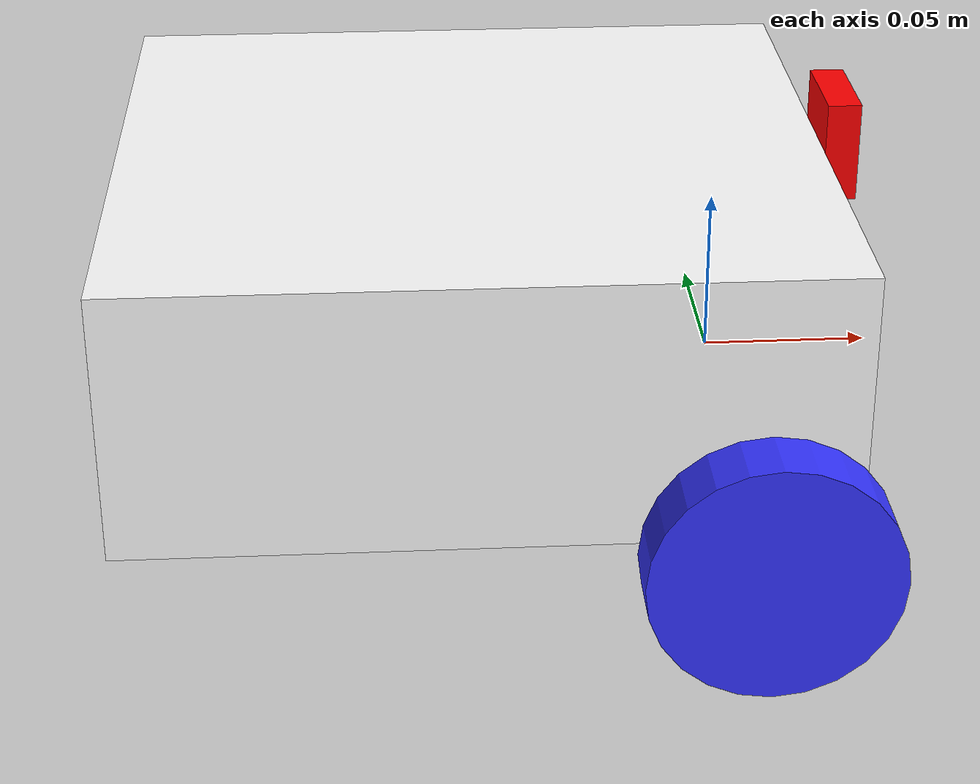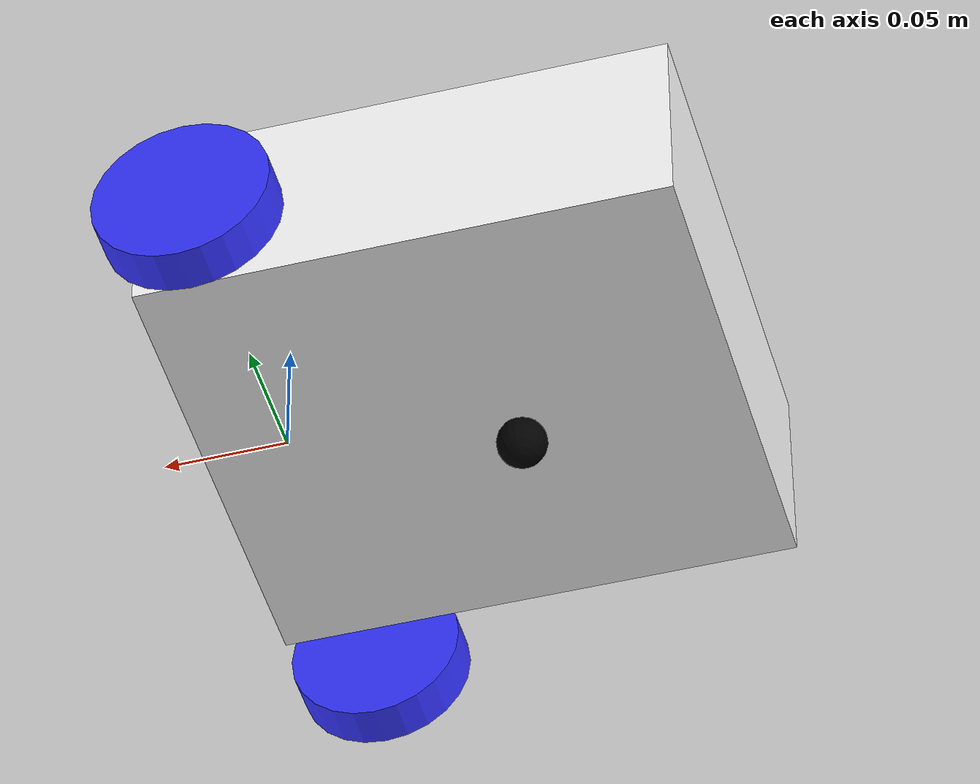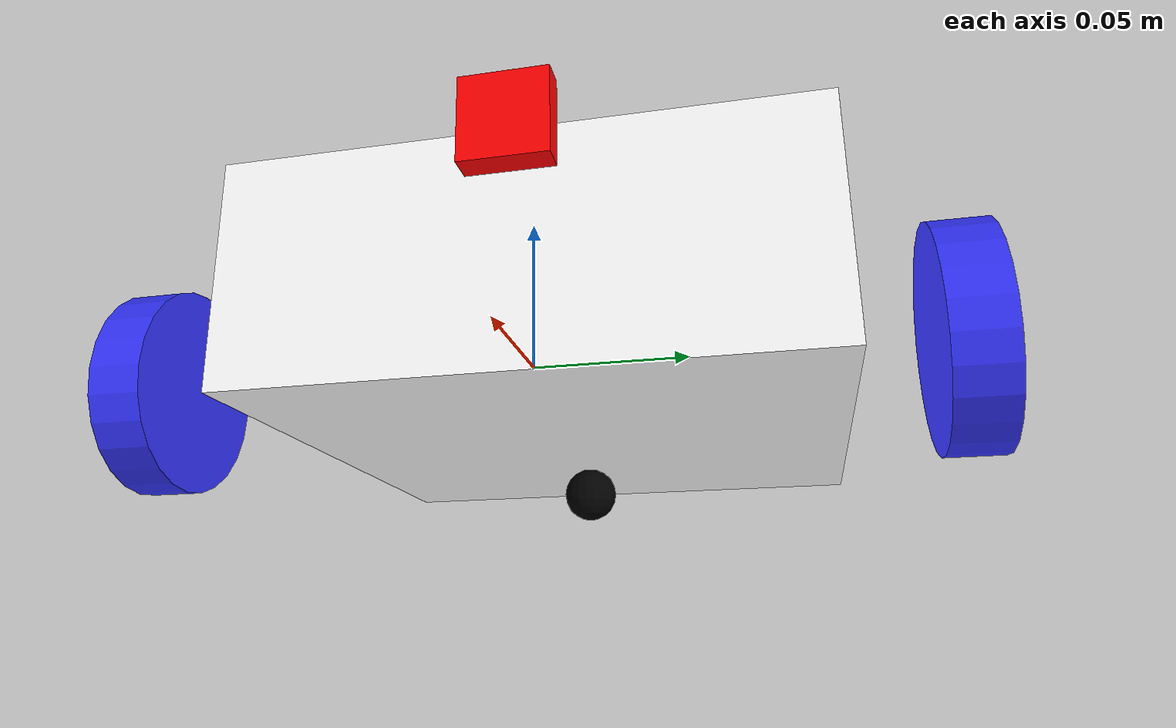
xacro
<?xml version="1.0"?>
<robot xmlns:xacro="http://www.ros.org/wiki/xacro" name="Robot">

	<xacro:arg name="use_ros2_control" default="true" />
	<xacro:arg name="sim_mode" default="false" />

	<xacro:include filename="robot_core.xacro" />

	<xacro:if value="$(arg use_ros2_control)">
		<xacro:include filename="ros2_control.xacro" />
	</xacro:if>
	<xacro:unless value="$(arg use_ros2_control)">
		<xacro:include filename="gazebo_control.xacro" />
	</xacro:unless>

	<xacro:include filename="depth_camera.xacro" />

</robot>

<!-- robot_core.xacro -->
<robot xmlns:xacro="http://www.ros.org/wiki/xacro">

	<xacro:include filename="inertial_macros.xacro" />

	<xacro:property name="chassis_length" value="0.21"/>
    <xacro:property name="chassis_width" value="0.2"/>
    <xacro:property name="chassis_height" value="0.08"/>
    <xacro:property name="chassis_mass" value="1.0"/>
    <xacro:property name="wheel_radius" value="0.035"/>
    <xacro:property name="wheel_thickness" value="0.018"/>
    <xacro:property name="wheel_mass" value="0.1"/>
    <xacro:property name="wheel_offset_x" value="0.179"/>
    <xacro:property name="wheel_offset_y" value="0.13"/>
    <xacro:property name="wheel_offset_z" value="0.01"/>
    <xacro:property name="caster_wheel_radius" value="0.01"/>
    <xacro:property name="caster_wheel_mass" value="0.01"/>
    <xacro:property name="caster_wheel_offset_x" value="0.085"/>
    <xacro:property name="caster_wheel_offset_z" value="${wheel_offset_z - wheel_radius + caster_wheel_radius}"/>

	<material name="white">
    <color rgba="1 1 1 1"/>
	</material>

	<material name="orange">
	    <color rgba="1 0.3 0.1 1"/>
	</material>

	<material name="blue">
	    <color rgba="0.2 0.2 1 1"/>
	</material>

	<material name="black">
	    <color rgba="0 0 0 1"/>
	</material>

	<material name="red">
        <color rgba="1 0 0 1"/>
    </material>

	<!-- BASE LINK -->

	<link name="base_link">
	</link>

	<!-- BASE_FOOTPRINT LINK for SLAM purpose-->

    <joint name="base_footprint_joint" type="fixed">
        <parent link="base_link"/>
        <child link="base_footprint"/>
        <origin xyz="0 0 0" rpy="0 0 0"/>
    </joint>

    <link name="base_footprint">
    </link>

	<!-- CHASSIS LINK -->

	<joint name="chassis_joint" type="fixed">
	    <parent link="base_link"/>
	    <child link="chassis"/>
	    <origin xyz="${-wheel_offset_x} 0 ${-wheel_offset_z}"/>
	</joint>

	<link name="chassis">
		<!-- Visual and collision here -->
	    <visual>
	        <origin xyz="${chassis_length/2} 0 ${chassis_height/2}"/>
	        <geometry>
	            <box size="${chassis_length} ${chassis_width} ${chassis_height}"/>
	        </geometry>
	        <material name="white"/>
	    </visual>
		<collision>
			<origin xyz="${chassis_length/2} 0 ${chassis_height/2}"/>
	        <geometry>
	            <box size="${chassis_length} ${chassis_width} ${chassis_height}"/>
	        </geometry>
		</collision>
		<!-- Inertial here -->
		<xacro:inertial_box mass="0.5" x="${chassis_length}" y="${chassis_width}" z="${chassis_height}">
			<origin xyz="${chassis_length/2} 0 ${chassis_height/2}" rpy="0 0 0"/>
		</xacro:inertial_box>
	</link>

	<gazebo reference="chassis">
		<material>Gazebo/White</material>
	</gazebo>

	<!-- LEFT WHEEL LINK-->

	<joint name="left_wheel_joint" type="continuous">
		<parent link="base_link"/>
		<child link="left_wheel"/>
		<origin xyz="0 ${wheel_offset_y} 0" rpy="-${pi/2} 0 0"/>
		<axis xyz="0 0 1"/>
	</joint>

	<link name="left_wheel">
		<visual>
			<geometry>
				<cylinder radius="${wheel_radius}" length="${wheel_thickness}"/>
			</geometry>
			<material name="blue"/>
		</visual>
		<collision>
			<geometry>
				<sphere radius="${wheel_radius}"/>
			</geometry>
		</collision>
		<xacro:inertial_cylinder mass="${wheel_mass}" length="${wheel_thickness}" radius="${wheel_radius}">
			<origin xyz="0 0 0" rpy="0 0 0"/>
		</xacro:inertial_cylinder>
	</link>

	<gazebo reference="left_wheel">
		<material>Gazebo/Blue</material>
	</gazebo>

	<!-- RIGHT WHEEL LINK -->
	<joint name="right_wheel_joint" type="continuous">
		<parent link="base_link"/>
		<child link="right_wheel"/>
		<origin xyz="0 ${-wheel_offset_y} 0" rpy="${pi/2} 0 0"/>
		<axis xyz="0 0 -1"/>
	</joint>

	<link name="right_wheel">
		<visual>
			<geometry>
				<cylinder length="${wheel_thickness}" radius="${wheel_radius}" />
			</geometry>
			<material name="blue"/>
		</visual>
		<collision>
			<geometry>
				<sphere radius="${wheel_radius}"/>
			</geometry>
		</collision>
		<xacro:inertial_cylinder mass="${wheel_mass}" length="${wheel_thickness}" radius="${wheel_radius}">
			<origin xyz="0 0 0" rpy="0 0 0"/>
		</xacro:inertial_cylinder>
	</link>

	<gazebo reference="right_wheel">
		<material>Gazebo/Blue</material>
	</gazebo>

	<!-- CASTER WHEEL LINK -->
	<joint name="caster_wheel_joint" type="fixed">
		<parent link="chassis"/>
		<child link="caster_wheel"/>
		<origin xyz="${caster_wheel_offset_x} 0 ${caster_wheel_offset_z}" />
	</joint>

	<link name="caster_wheel">
		<visual>
			<geometry>
				<sphere radius="${caster_wheel_radius}" />
			</geometry>
			<material name="black"/>
		</visual>
		<collision>
			<geometry>
				<sphere radius="${caster_wheel_radius}" />
			</geometry>
		</collision>
		<xacro:inertial_sphere mass="${caster_wheel_mass}" radius="${caster_wheel_radius}">
			<origin xyz="0 0 0" rpy="0 0 0"/>
		</xacro:inertial_sphere>
	</link>

	<gazebo reference="caster_wheel">
		<material>Gazebo/Black</material>
		<mu1 value="0.001" />
		<mu2 value="0.001" />
	</gazebo>

</robot>

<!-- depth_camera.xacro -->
<robot xmlns:xacro="http://www.ros.org/wiki/xacro" >

    <joint name="camera_joint" type="fixed">
        <parent link="chassis"/>
        <child link="camera_link"/>
        <origin xyz="0.215 0 0.08" rpy="0 0 0"/>
    </joint>

    <link name="camera_link">
        <visual>
            <geometry>
                <box size="0.010 0.03 0.03"/>
            </geometry>
            <material name="red" />
        </visual>
    </link>

    <joint name="camera_optical_joint" type="fixed">
        <parent link="camera_link" />
        <child link="camera_link_optical" />
        <origin xyz="0 0 0" rpy="${-pi/2} 0 ${-pi/2}" />
    </joint>

    <link name="camera_link_optical"></link>

    <gazebo reference="camera_link">
        <material>Gazebo/Red</material>

        <sensor name="camera" type="depth">
        <pose> 0 0 0 0 0 0 </pose>
        <visualize>true</visualize>
        <update_rate>100</update_rate>
        <camera>
            <horizontal_fov>1.089</horizontal_fov>
            <image>
                <format>B8G8R8</format>
                <width>640</width>
                <height>480</height>
            </image>
            <clip>
                <near>0.05</near>
                <far>8.0</far>
            </clip>
        </camera>
        <plugin name="camera_controller" filename="libgazebo_ros_camera.so">
            <frame_name>camera_link_optical</frame_name>
            <alwaysOn>true</alwaysOn>
            <min_depth>0.1</min_depth>
            <max_depth>100.0</max_depth>
        </plugin>
    </sensor>

    </gazebo>

    <!-- IMU Sensor Integration -->
    <joint name="imu_joint" type="fixed">
        <parent link="chassis"/>
        <child link="imu_link"/>
        <origin xyz="0.1 0 0.05" rpy="0 0 0"/>
    </joint>

    <link name="imu_link">
        <visual>
            <geometry>
                <cylinder length="0.05" radius="0.02"/>
            </geometry>
            <material name="orange"/>
        </visual>
    </link>

    <gazebo reference="imu_link">
        <material>Gazebo/Orange</material>
        <sensor name="imu_sensor" type="imu">
            <pose>0 0 0 0 0 0</pose>
            <update_rate>100</update_rate>
            <imu>
                <topic>/imu</topic>
            </imu>
            <plugin name="imu_plugin" filename="libgazebo_ros_imu_sensor.so">
                <visualize>true</visualize>
                <always_on>true</always_on>
                <update_rate>100</update_rate>
                <body_name>imu_link</body_name>
            </plugin>
        </sensor>
    </gazebo>

</robot>
